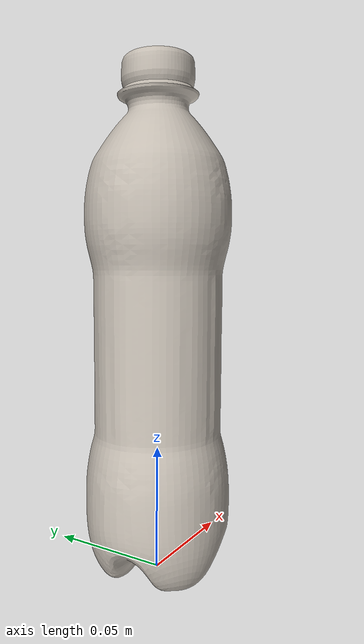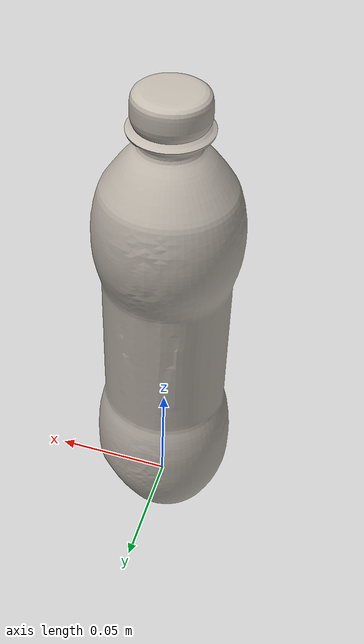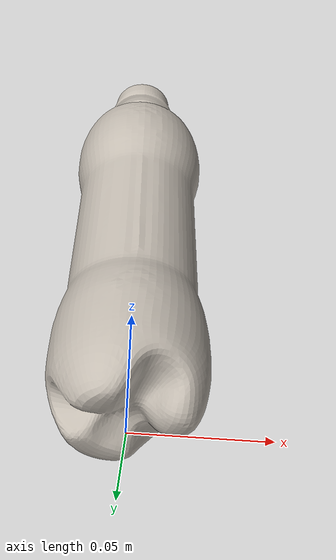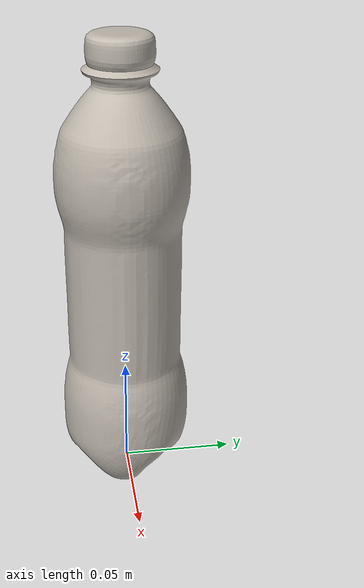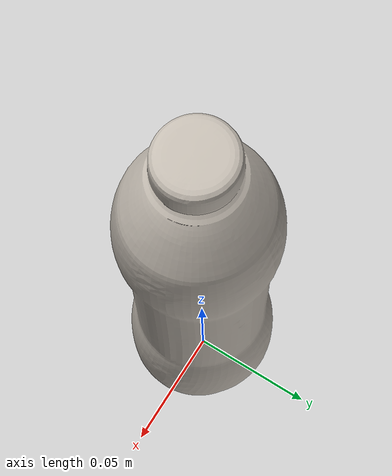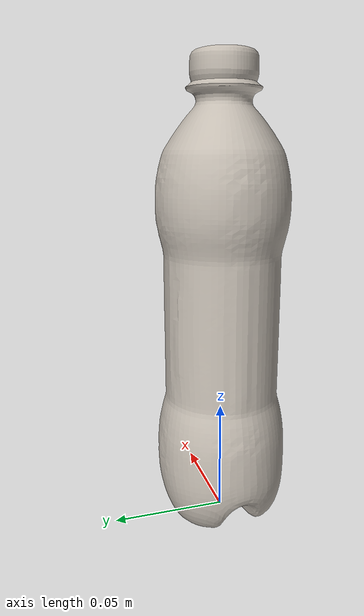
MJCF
<mujoco model="001_bottle_base2">
  <compiler angle="radian" meshdir="."/>

  <asset>
    <texture name="tex" type="2d" file="assets/material_0.png"/>
    <material name="mat" texture="tex"/>
    <mesh name="visual_mesh" file="assets/V_001_bottle_base2.obj" scale="0.13 0.13 0.13"/>
  </asset>

  <worldbody>
    <body name="001_bottle_base2" quat="0.707106781 0.707106781 0.0 0.0">
      <joint name="free_joint" type="free"/>
      <inertial pos="0 0 0" mass="0.20" diaginertia="0.00035 0.00035 0.00012"/>
      <geom name="visual" type="mesh" mesh="visual_mesh" material="mat" group="0" contype="0" conaffinity="0" density="0"/>
      <geom name="collision" type="mesh" mesh="visual_mesh" rgba="0 0 0 0" group="1"
            contype="1" conaffinity="1" friction="2.5 0.05 0.001" condim="4" density="250"/>
    </body>
  </worldbody>
</mujoco>
